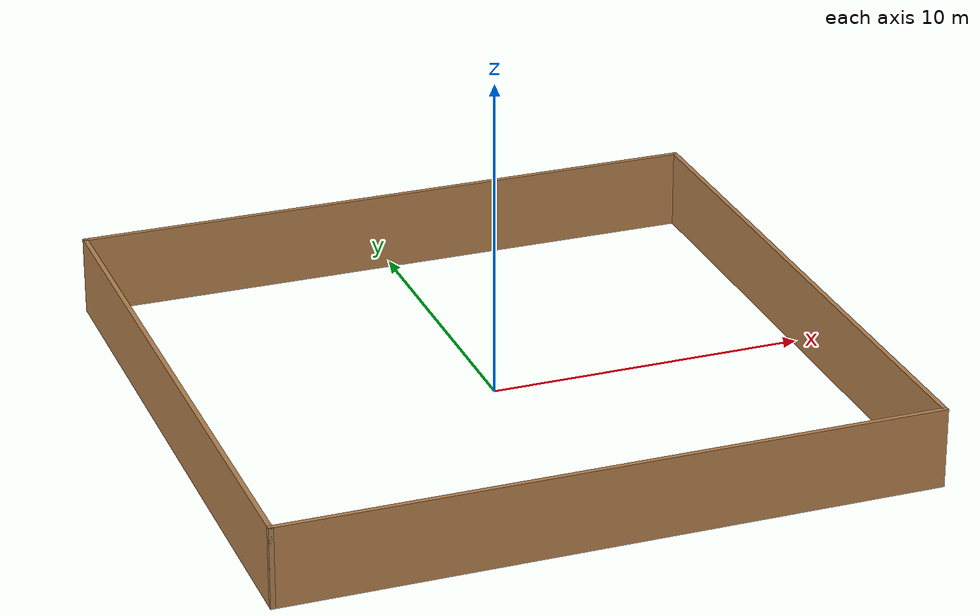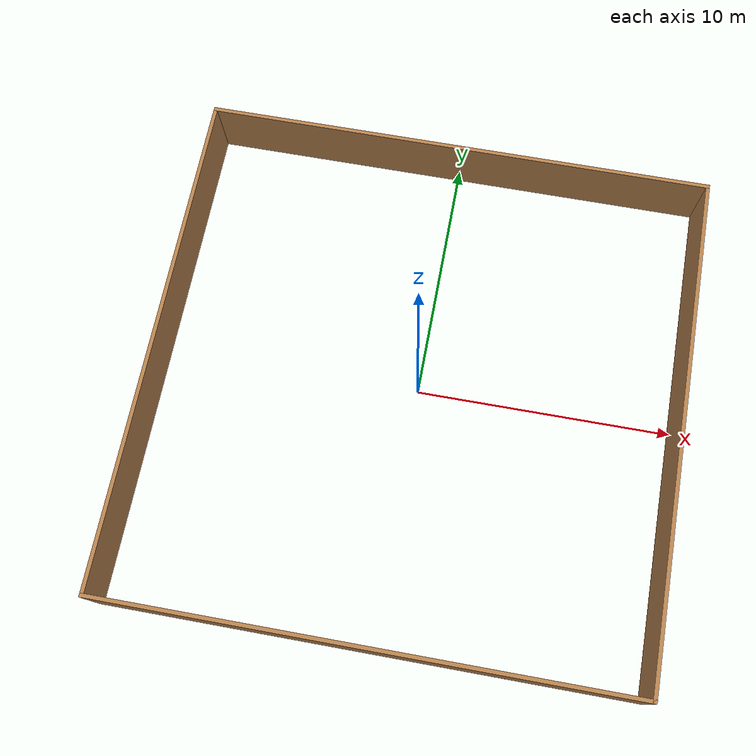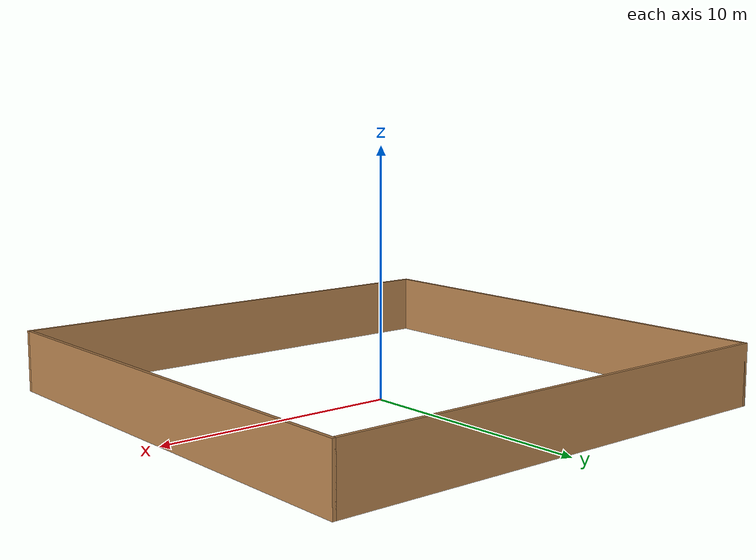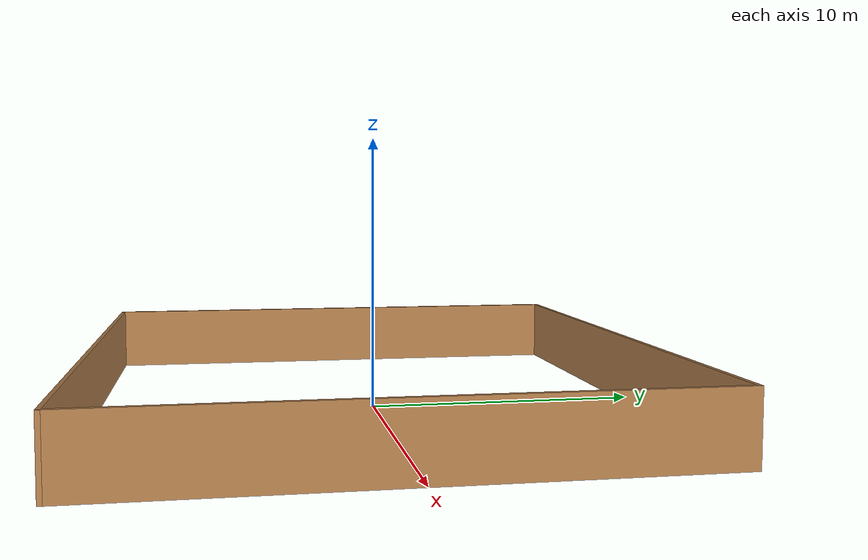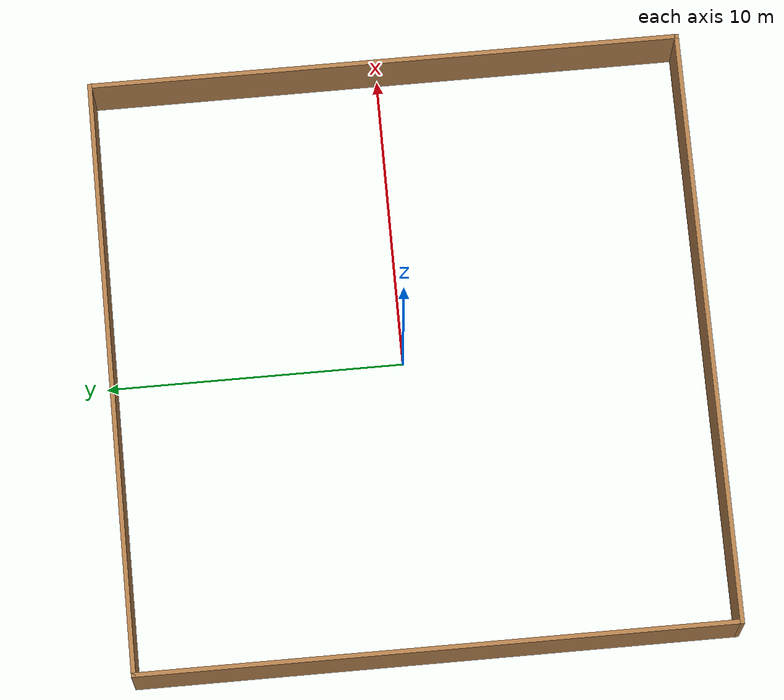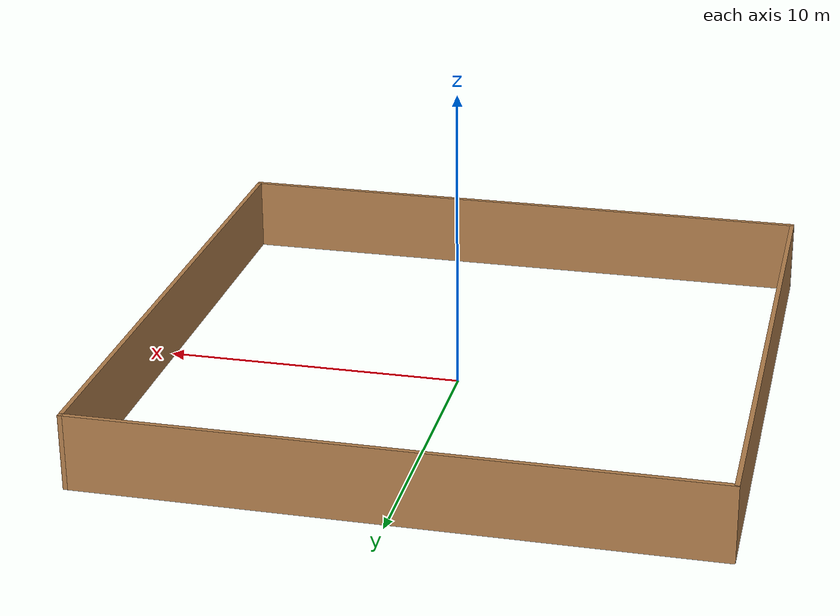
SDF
<?xml version='1.0'?>
<sdf version='1.6'>
  <model name='Square_Box'>
    <pose frame=''>-0.094068 -0.221606 0 0 -0 0</pose>
    <link name='Wall_17'>
      <collision name='Wall_17_Collision'>
        <geometry>
          <box>
            <size>20.25 0.15 2.5</size>
          </box>
        </geometry>
        <pose frame=''>0 0 1.25 0 -0 0</pose>
      </collision>
      <visual name='Wall_17_Visual'>
        <pose frame=''>0 0 1.25 0 -0 0</pose>
        <geometry>
          <box>
            <size>20.25 0.15 2.5</size>
          </box>
        </geometry>
        <material>
          <script>
            <uri>file://media/materials/scripts/gazebo.material</uri>
            <name>Gazebo/Wood</name>
          </script>
          <ambient>1 1 1 1</ambient>
        </material>
        <meta>
          <layer>0</layer>
        </meta>
      </visual>
      <pose frame=''>0 -9.925 0 0 -0 0</pose>
    </link>
    <link name='Wall_23'>
      <collision name='Wall_23_Collision'>
        <geometry>
          <box>
            <size>20 0.15 2.5</size>
          </box>
        </geometry>
        <pose frame=''>0 0 1.25 0 -0 0</pose>
      </collision>
      <visual name='Wall_23_Visual'>
        <pose frame=''>0 0 1.25 0 -0 0</pose>
        <geometry>
          <box>
            <size>20 0.15 2.5</size>
          </box>
        </geometry>
        <material>
          <script>
            <uri>file://media/materials/scripts/gazebo.material</uri>
            <name>Gazebo/Wood</name>
          </script>
          <ambient>1 1 1 1</ambient>
        </material>
        <meta>
          <layer>0</layer>
        </meta>
      </visual>
      <pose frame=''>-10.05 -0 0 0 -0 1.5708</pose>
    </link>
    <link name='Wall_24'>
      <collision name='Wall_24_Collision'>
        <geometry>
          <box>
            <size>20.25 0.15 2.5</size>
          </box>
        </geometry>
        <pose frame=''>0 0 1.25 0 -0 0</pose>
      </collision>
      <visual name='Wall_24_Visual'>
        <pose frame=''>0 0 1.25 0 -0 0</pose>
        <geometry>
          <box>
            <size>20.25 0.15 2.5</size>
          </box>
        </geometry>
        <material>
          <script>
            <uri>file://media/materials/scripts/gazebo.material</uri>
            <name>Gazebo/Wood</name>
          </script>
          <ambient>1 1 1 1</ambient>
        </material>
        <meta>
          <layer>0</layer>
        </meta>
      </visual>
      <pose frame=''>0 9.925 0 0 -0 0</pose>
    </link>
    <link name='Wall_25'>
      <collision name='Wall_25_Collision'>
        <geometry>
          <box>
            <size>20 0.15 2.5</size>
          </box>
        </geometry>
        <pose frame=''>0 0 1.25 0 -0 0</pose>
      </collision>
      <visual name='Wall_25_Visual'>
        <pose frame=''>0 0 1.25 0 -0 0</pose>
        <geometry>
          <box>
            <size>20 0.15 2.5</size>
          </box>
        </geometry>
        <material>
          <script>
            <uri>file://media/materials/scripts/gazebo.material</uri>
            <name>Gazebo/Wood</name>
          </script>
          <ambient>1 1 1 1</ambient>
        </material>
        <meta>
          <layer>0</layer>
        </meta>
      </visual>
      <pose frame=''>10.05 -0 0 0 -0 -1.5708</pose>
    </link>
    <static>1</static>
  </model>
</sdf>
